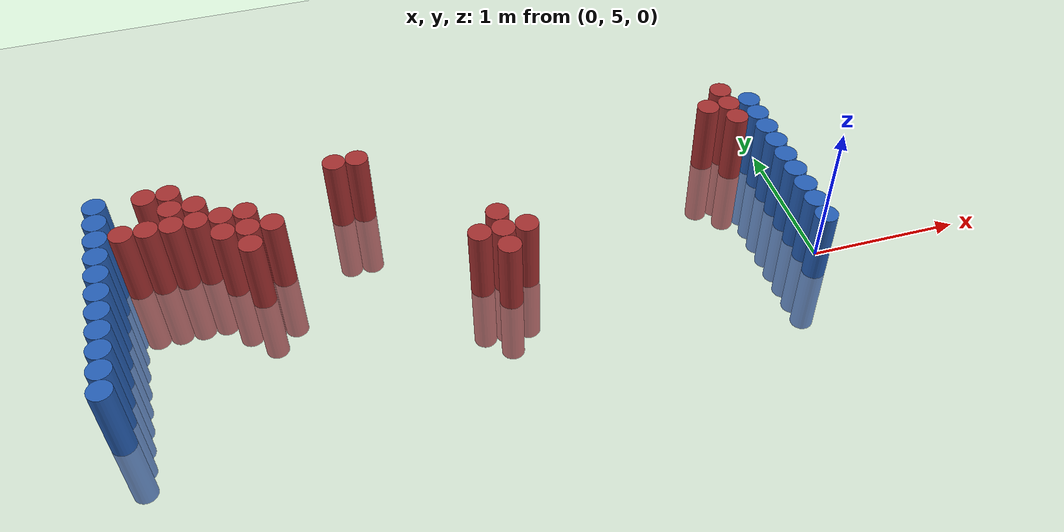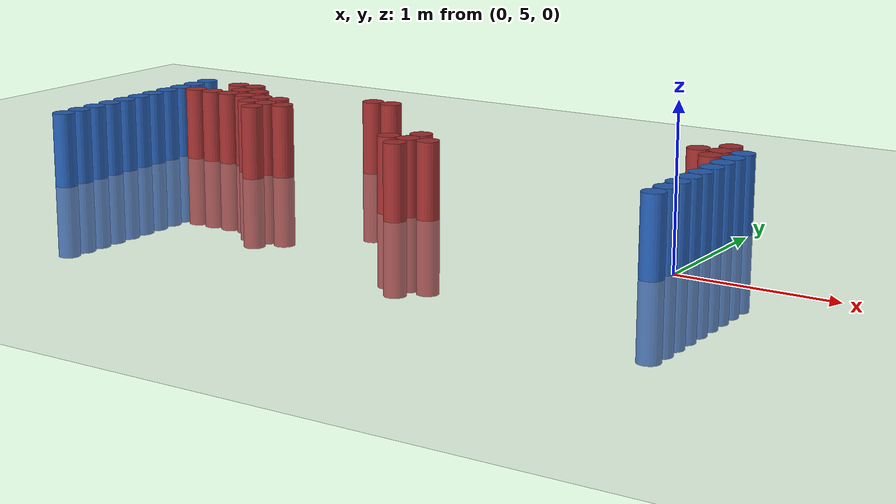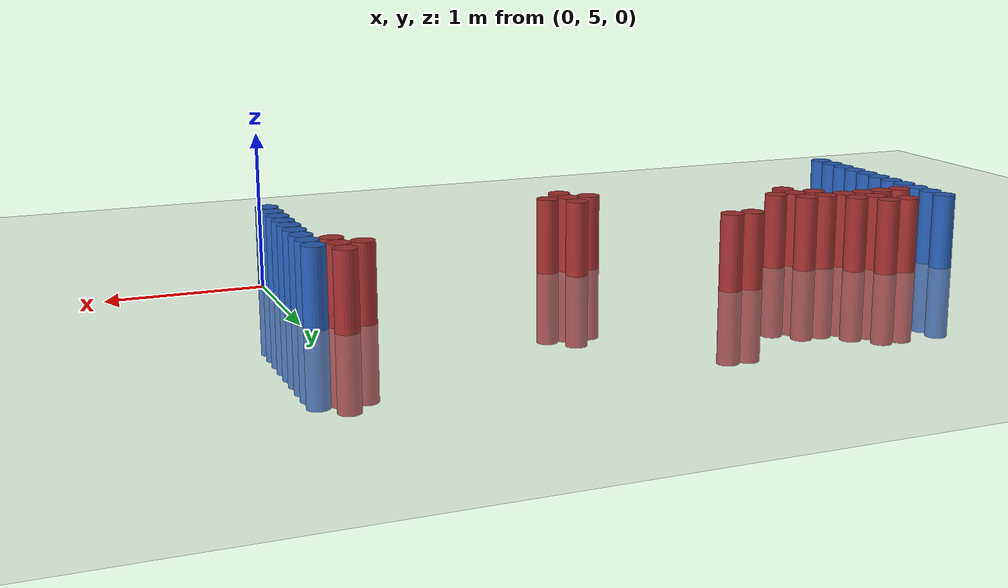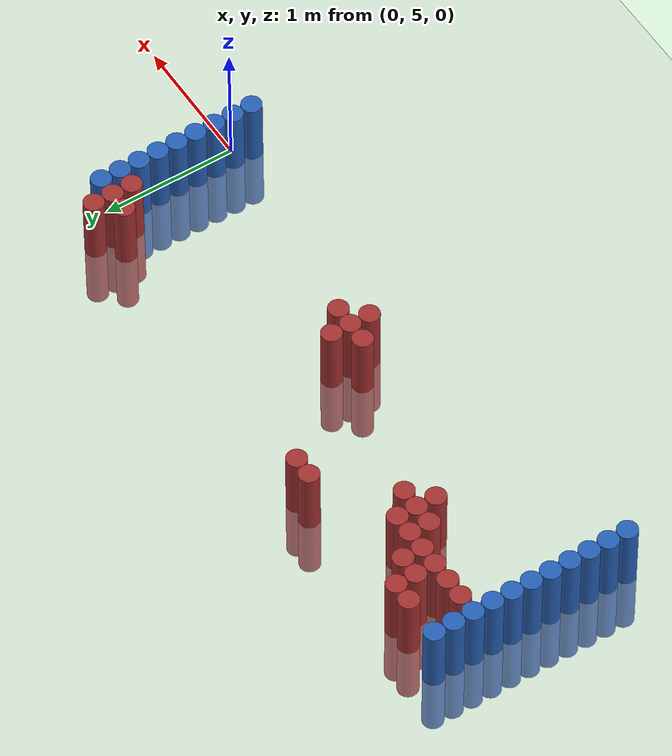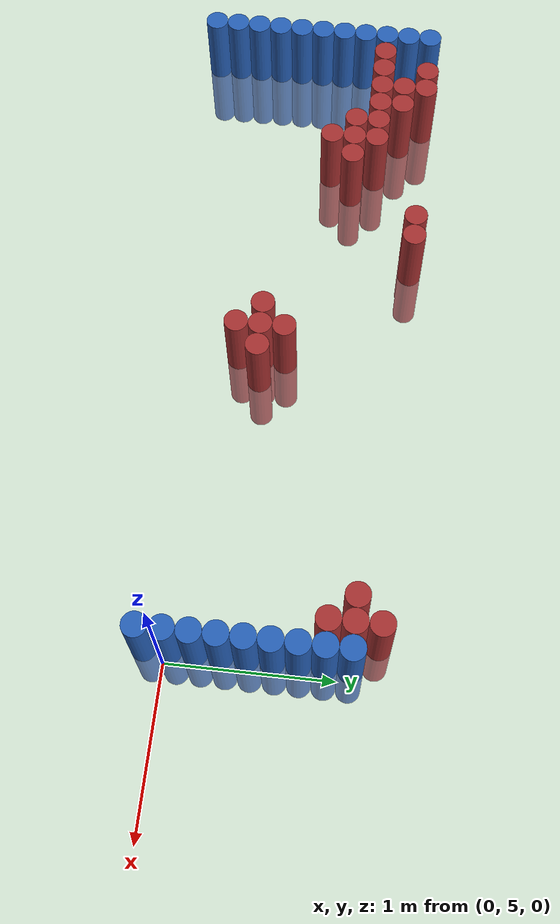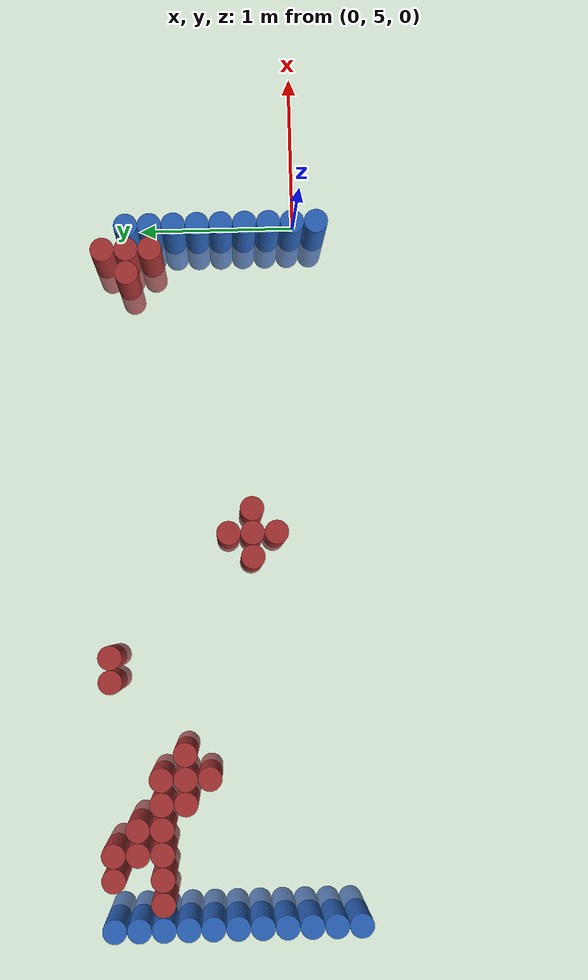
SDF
<sdf version="1.6">
 <world name="default">
  <model name="ground_plane">
   <static>1</static>
   <link name="link">
    <collision name="collision">
     <geometry><plane><normal>0 0 1</normal><size>100 100</size></plane></geometry>
     <surface><friction><ode><mu>100</mu><mu2>50</mu2></ode></friction></surface>
    </collision>
    <visual name="visual">
     <cast_shadows>0</cast_shadows>
     <geometry><plane><normal>0 0 1</normal><size>100 100</size></plane></geometry>
     <material>
      <script><uri>file://media/materials/scripts/gazebo.material</uri><name>Gazebo/Grey</name></script>
     </material>
    </visual>
   </link>
  </model>
  <model name="unit_cylinder_91">
   <static>1</static>
   <pose>-4.425000 4.725000 0.000000 0.000000 0.000000 0.000000</pose>
   <link name="link">
    <inertial>
     <mass>1</mass>
     <inertia><ixx>0.145833</ixx><ixy>0</ixy><ixz>0</ixz><iyy>0.145833</iyy><iyz>0</iyz><izz>0.125</izz></inertia>
    </inertial>
    <collision name="collision">
     <geometry><cylinder><radius>0.075000</radius><length>1</length></cylinder></geometry>
    </collision>
    <visual name="visual">
     <geometry><cylinder><radius>0.075000</radius><length>1</length></cylinder></geometry>
     <material>
      <ambient>0.152000 0.379000 0.720000 1</ambient>
      <diffuse>0.152000 0.379000 0.720000 1</diffuse>
     </material>
     <material>
      <script><name>Gazebo/Grey</name><uri>file://media/materials/scripts/gazebo.material</uri></script>
     </material>
    </visual>
   </link>
  </model>
  <model name="unit_cylinder_92">
   <static>1</static>
   <pose>-0.075000 4.875000 0.000000 0.000000 0.000000 0.000000</pose>
   <link name="link">
    <inertial>
     <mass>1</mass>
     <inertia><ixx>0.145833</ixx><ixy>0</ixy><ixz>0</ixz><iyy>0.145833</iyy><iyz>0</iyz><izz>0.125</izz></inertia>
    </inertial>
    <collision name="collision">
     <geometry><cylinder><radius>0.075000</radius><length>1</length></cylinder></geometry>
    </collision>
    <visual name="visual">
     <geometry><cylinder><radius>0.075000</radius><length>1</length></cylinder></geometry>
     <material>
      <ambient>0.152000 0.379000 0.720000 1</ambient>
      <diffuse>0.152000 0.379000 0.720000 1</diffuse>
     </material>
     <material>
      <script><name>Gazebo/Grey</name><uri>file://media/materials/scripts/gazebo.material</uri></script>
     </material>
    </visual>
   </link>
  </model>
  <model name="unit_cylinder_93">
   <static>1</static>
   <pose>-4.425000 4.875000 0.000000 0.000000 0.000000 0.000000</pose>
   <link name="link">
    <inertial>
     <mass>1</mass>
     <inertia><ixx>0.145833</ixx><ixy>0</ixy><ixz>0</ixz><iyy>0.145833</iyy><iyz>0</iyz><izz>0.125</izz></inertia>
    </inertial>
    <collision name="collision">
     <geometry><cylinder><radius>0.075000</radius><length>1</length></cylinder></geometry>
    </collision>
    <visual name="visual">
     <geometry><cylinder><radius>0.075000</radius><length>1</length></cylinder></geometry>
     <material>
      <ambient>0.152000 0.379000 0.720000 1</ambient>
      <diffuse>0.152000 0.379000 0.720000 1</diffuse>
     </material>
     <material>
      <script><name>Gazebo/Grey</name><uri>file://media/materials/scripts/gazebo.material</uri></script>
     </material>
    </visual>
   </link>
  </model>
  <model name="unit_cylinder_94">
   <static>1</static>
   <pose>-0.075000 5.025000 0.000000 0.000000 0.000000 0.000000</pose>
   <link name="link">
    <inertial>
     <mass>1</mass>
     <inertia><ixx>0.145833</ixx><ixy>0</ixy><ixz>0</ixz><iyy>0.145833</iyy><iyz>0</iyz><izz>0.125</izz></inertia>
    </inertial>
    <collision name="collision">
     <geometry><cylinder><radius>0.075000</radius><length>1</length></cylinder></geometry>
    </collision>
    <visual name="visual">
     <geometry><cylinder><radius>0.075000</radius><length>1</length></cylinder></geometry>
     <material>
      <ambient>0.152000 0.379000 0.720000 1</ambient>
      <diffuse>0.152000 0.379000 0.720000 1</diffuse>
     </material>
     <material>
      <script><name>Gazebo/Grey</name><uri>file://media/materials/scripts/gazebo.material</uri></script>
     </material>
    </visual>
   </link>
  </model>
  <model name="unit_cylinder_95">
   <static>1</static>
   <pose>-4.425000 5.025000 0.000000 0.000000 0.000000 0.000000</pose>
   <link name="link">
    <inertial>
     <mass>1</mass>
     <inertia><ixx>0.145833</ixx><ixy>0</ixy><ixz>0</ixz><iyy>0.145833</iyy><iyz>0</iyz><izz>0.125</izz></inertia>
    </inertial>
    <collision name="collision">
     <geometry><cylinder><radius>0.075000</radius><length>1</length></cylinder></geometry>
    </collision>
    <visual name="visual">
     <geometry><cylinder><radius>0.075000</radius><length>1</length></cylinder></geometry>
     <material>
      <ambient>0.152000 0.379000 0.720000 1</ambient>
      <diffuse>0.152000 0.379000 0.720000 1</diffuse>
     </material>
     <material>
      <script><name>Gazebo/Grey</name><uri>file://media/materials/scripts/gazebo.material</uri></script>
     </material>
    </visual>
   </link>
  </model>
  <model name="unit_cylinder_96">
   <static>1</static>
   <pose>-4.425000 5.175000 0.000000 0.000000 0.000000 0.000000</pose>
   <link name="link">
    <inertial>
     <mass>1</mass>
     <inertia><ixx>0.145833</ixx><ixy>0</ixy><ixz>0</ixz><iyy>0.145833</iyy><iyz>0</iyz><izz>0.125</izz></inertia>
    </inertial>
    <collision name="collision">
     <geometry><cylinder><radius>0.075000</radius><length>1</length></cylinder></geometry>
    </collision>
    <visual name="visual">
     <geometry><cylinder><radius>0.075000</radius><length>1</length></cylinder></geometry>
     <material>
      <ambient>0.152000 0.379000 0.720000 1</ambient>
      <diffuse>0.152000 0.379000 0.720000 1</diffuse>
     </material>
     <material>
      <script><name>Gazebo/Grey</name><uri>file://media/materials/scripts/gazebo.material</uri></script>
     </material>
    </visual>
   </link>
  </model>
  <model name="unit_cylinder_97">
   <static>1</static>
   <pose>-4.425000 5.325000 0.000000 0.000000 0.000000 0.000000</pose>
   <link name="link">
    <inertial>
     <mass>1</mass>
     <inertia><ixx>0.145833</ixx><ixy>0</ixy><ixz>0</ixz><iyy>0.145833</iyy><iyz>0</iyz><izz>0.125</izz></inertia>
    </inertial>
    <collision name="collision">
     <geometry><cylinder><radius>0.075000</radius><length>1</length></cylinder></geometry>
    </collision>
    <visual name="visual">
     <geometry><cylinder><radius>0.075000</radius><length>1</length></cylinder></geometry>
     <material>
      <ambient>0.152000 0.379000 0.720000 1</ambient>
      <diffuse>0.152000 0.379000 0.720000 1</diffuse>
     </material>
     <material>
      <script><name>Gazebo/Grey</name><uri>file://media/materials/scripts/gazebo.material</uri></script>
     </material>
    </visual>
   </link>
  </model>
  <model name="unit_cylinder_98">
   <static>1</static>
   <pose>-4.425000 5.475000 0.000000 0.000000 0.000000 0.000000</pose>
   <link name="link">
    <inertial>
     <mass>1</mass>
     <inertia><ixx>0.145833</ixx><ixy>0</ixy><ixz>0</ixz><iyy>0.145833</iyy><iyz>0</iyz><izz>0.125</izz></inertia>
    </inertial>
    <collision name="collision">
     <geometry><cylinder><radius>0.075000</radius><length>1</length></cylinder></geometry>
    </collision>
    <visual name="visual">
     <geometry><cylinder><radius>0.075000</radius><length>1</length></cylinder></geometry>
     <material>
      <ambient>0.152000 0.379000 0.720000 1</ambient>
      <diffuse>0.152000 0.379000 0.720000 1</diffuse>
     </material>
     <material>
      <script><name>Gazebo/Grey</name><uri>file://media/materials/scripts/gazebo.material</uri></script>
     </material>
    </visual>
   </link>
  </model>
  <model name="unit_cylinder_99">
   <static>1</static>
   <pose>-4.425000 5.625000 0.000000 0.000000 0.000000 0.000000</pose>
   <link name="link">
    <inertial>
     <mass>1</mass>
     <inertia><ixx>0.145833</ixx><ixy>0</ixy><ixz>0</ixz><iyy>0.145833</iyy><iyz>0</iyz><izz>0.125</izz></inertia>
    </inertial>
    <collision name="collision">
     <geometry><cylinder><radius>0.075000</radius><length>1</length></cylinder></geometry>
    </collision>
    <visual name="visual">
     <geometry><cylinder><radius>0.075000</radius><length>1</length></cylinder></geometry>
     <material>
      <ambient>0.152000 0.379000 0.720000 1</ambient>
      <diffuse>0.152000 0.379000 0.720000 1</diffuse>
     </material>
     <material>
      <script><name>Gazebo/Grey</name><uri>file://media/materials/scripts/gazebo.material</uri></script>
     </material>
    </visual>
   </link>
  </model>
  <model name="unit_cylinder_100">
   <static>1</static>
   <pose>-4.425000 5.775000 0.000000 0.000000 0.000000 0.000000</pose>
   <link name="link">
    <inertial>
     <mass>1</mass>
     <inertia><ixx>0.145833</ixx><ixy>0</ixy><ixz>0</ixz><iyy>0.145833</iyy><iyz>0</iyz><izz>0.125</izz></inertia>
    </inertial>
    <collision name="collision">
     <geometry><cylinder><radius>0.075000</radius><length>1</length></cylinder></geometry>
    </collision>
    <visual name="visual">
     <geometry><cylinder><radius>0.075000</radius><length>1</length></cylinder></geometry>
     <material>
      <ambient>0.152000 0.379000 0.720000 1</ambient>
      <diffuse>0.152000 0.379000 0.720000 1</diffuse>
     </material>
     <material>
      <script><name>Gazebo/Grey</name><uri>file://media/materials/scripts/gazebo.material</uri></script>
     </material>
    </visual>
   </link>
  </model>
  <model name="unit_cylinder_101">
   <static>1</static>
   <pose>-4.425000 5.925000 0.000000 0.000000 0.000000 0.000000</pose>
   <link name="link">
    <inertial>
     <mass>1</mass>
     <inertia><ixx>0.145833</ixx><ixy>0</ixy><ixz>0</ixz><iyy>0.145833</iyy><iyz>0</iyz><izz>0.125</izz></inertia>
    </inertial>
    <collision name="collision">
     <geometry><cylinder><radius>0.075000</radius><length>1</length></cylinder></geometry>
    </collision>
    <visual name="visual">
     <geometry><cylinder><radius>0.075000</radius><length>1</length></cylinder></geometry>
     <material>
      <ambient>0.152000 0.379000 0.720000 1</ambient>
      <diffuse>0.152000 0.379000 0.720000 1</diffuse>
     </material>
     <material>
      <script><name>Gazebo/Grey</name><uri>file://media/materials/scripts/gazebo.material</uri></script>
     </material>
    </visual>
   </link>
  </model>
  <model name="unit_cylinder_102">
   <static>1</static>
   <pose>-4.425000 6.075000 0.000000 0.000000 0.000000 0.000000</pose>
   <link name="link">
    <inertial>
     <mass>1</mass>
     <inertia><ixx>0.145833</ixx><ixy>0</ixy><ixz>0</ixz><iyy>0.145833</iyy><iyz>0</iyz><izz>0.125</izz></inertia>
    </inertial>
    <collision name="collision">
     <geometry><cylinder><radius>0.075000</radius><length>1</length></cylinder></geometry>
    </collision>
    <visual name="visual">
     <geometry><cylinder><radius>0.075000</radius><length>1</length></cylinder></geometry>
     <material>
      <ambient>0.152000 0.379000 0.720000 1</ambient>
      <diffuse>0.152000 0.379000 0.720000 1</diffuse>
     </material>
     <material>
      <script><name>Gazebo/Grey</name><uri>file://media/materials/scripts/gazebo.material</uri></script>
     </material>
    </visual>
   </link>
  </model>
  <model name="unit_cylinder_103">
   <static>1</static>
   <pose>-4.425000 6.225000 0.000000 0.000000 0.000000 0.000000</pose>
   <link name="link">
    <inertial>
     <mass>1</mass>
     <inertia><ixx>0.145833</ixx><ixy>0</ixy><ixz>0</ixz><iyy>0.145833</iyy><iyz>0</iyz><izz>0.125</izz></inertia>
    </inertial>
    <collision name="collision">
     <geometry><cylinder><radius>0.075000</radius><length>1</length></cylinder></geometry>
    </collision>
    <visual name="visual">
     <geometry><cylinder><radius>0.075000</radius><length>1</length></cylinder></geometry>
     <material>
      <ambient>0.152000 0.379000 0.720000 1</ambient>
      <diffuse>0.152000 0.379000 0.720000 1</diffuse>
     </material>
     <material>
      <script><name>Gazebo/Grey</name><uri>file://media/materials/scripts/gazebo.material</uri></script>
     </material>
    </visual>
   </link>
  </model>
  <model name="unit_cylinder_126">
   <static>1</static>
   <pose>-4.275000 5.925000 0.000000 0.000000 0.000000 0.000000</pose>
   <link name="link">
    <inertial>
     <mass>1</mass>
     <inertia><ixx>0.145833</ixx><ixy>0</ixy><ixz>0</ixz><iyy>0.145833</iyy><iyz>0</iyz><izz>0.125</izz></inertia>
    </inertial>
    <collision name="collision">
     <geometry><cylinder><radius>0.075000</radius><length>1</length></cylinder></geometry>
    </collision>
    <visual name="visual">
     <geometry><cylinder><radius>0.075000</radius><length>1</length></cylinder></geometry>
     <material>
      <ambient>0.648000 0.192000 0.192000 1</ambient>
      <diffuse>0.648000 0.192000 0.192000 1</diffuse>
     </material>
     <material>
      <script><name>Gazebo/Grey</name><uri>file://media/materials/scripts/gazebo.material</uri></script>
     </material>
    </visual>
   </link>
  </model>
  <model name="unit_cylinder_144">
   <static>1</static>
   <pose>-4.125000 5.925000 0.000000 0.000000 0.000000 0.000000</pose>
   <link name="link">
    <inertial>
     <mass>1</mass>
     <inertia><ixx>0.145833</ixx><ixy>0</ixy><ixz>0</ixz><iyy>0.145833</iyy><iyz>0</iyz><izz>0.125</izz></inertia>
    </inertial>
    <collision name="collision">
     <geometry><cylinder><radius>0.075000</radius><length>1</length></cylinder></geometry>
    </collision>
    <visual name="visual">
     <geometry><cylinder><radius>0.075000</radius><length>1</length></cylinder></geometry>
     <material>
      <ambient>0.648000 0.192000 0.192000 1</ambient>
      <diffuse>0.648000 0.192000 0.192000 1</diffuse>
     </material>
     <material>
      <script><name>Gazebo/Grey</name><uri>file://media/materials/scripts/gazebo.material</uri></script>
     </material>
    </visual>
   </link>
  </model>
  <model name="unit_cylinder_145">
   <static>1</static>
   <pose>-4.125000 6.225000 0.000000 0.000000 0.000000 0.000000</pose>
   <link name="link">
    <inertial>
     <mass>1</mass>
     <inertia><ixx>0.145833</ixx><ixy>0</ixy><ixz>0</ixz><iyy>0.145833</iyy><iyz>0</iyz><izz>0.125</izz></inertia>
    </inertial>
    <collision name="collision">
     <geometry><cylinder><radius>0.075000</radius><length>1</length></cylinder></geometry>
    </collision>
    <visual name="visual">
     <geometry><cylinder><radius>0.075000</radius><length>1</length></cylinder></geometry>
     <material>
      <ambient>0.648000 0.192000 0.192000 1</ambient>
      <diffuse>0.648000 0.192000 0.192000 1</diffuse>
     </material>
     <material>
      <script><name>Gazebo/Grey</name><uri>file://media/materials/scripts/gazebo.material</uri></script>
     </material>
    </visual>
   </link>
  </model>
  <model name="unit_cylinder_153">
   <static>1</static>
   <pose>-3.975000 5.925000 0.000000 0.000000 0.000000 0.000000</pose>
   <link name="link">
    <inertial>
     <mass>1</mass>
     <inertia><ixx>0.145833</ixx><ixy>0</ixy><ixz>0</ixz><iyy>0.145833</iyy><iyz>0</iyz><izz>0.125</izz></inertia>
    </inertial>
    <collision name="collision">
     <geometry><cylinder><radius>0.075000</radius><length>1</length></cylinder></geometry>
    </collision>
    <visual name="visual">
     <geometry><cylinder><radius>0.075000</radius><length>1</length></cylinder></geometry>
     <material>
      <ambient>0.648000 0.192000 0.192000 1</ambient>
      <diffuse>0.648000 0.192000 0.192000 1</diffuse>
     </material>
     <material>
      <script><name>Gazebo/Grey</name><uri>file://media/materials/scripts/gazebo.material</uri></script>
     </material>
    </visual>
   </link>
  </model>
  <model name="unit_cylinder_154">
   <static>1</static>
   <pose>-3.975000 6.075000 0.000000 0.000000 0.000000 0.000000</pose>
   <link name="link">
    <inertial>
     <mass>1</mass>
     <inertia><ixx>0.145833</ixx><ixy>0</ixy><ixz>0</ixz><iyy>0.145833</iyy><iyz>0</iyz><izz>0.125</izz></inertia>
    </inertial>
    <collision name="collision">
     <geometry><cylinder><radius>0.075000</radius><length>1</length></cylinder></geometry>
    </collision>
    <visual name="visual">
     <geometry><cylinder><radius>0.075000</radius><length>1</length></cylinder></geometry>
     <material>
      <ambient>0.648000 0.192000 0.192000 1</ambient>
      <diffuse>0.648000 0.192000 0.192000 1</diffuse>
     </material>
     <material>
      <script><name>Gazebo/Grey</name><uri>file://media/materials/scripts/gazebo.material</uri></script>
     </material>
    </visual>
   </link>
  </model>
  <model name="unit_cylinder_155">
   <static>1</static>
   <pose>-3.975000 6.225000 0.000000 0.000000 0.000000 0.000000</pose>
   <link name="link">
    <inertial>
     <mass>1</mass>
     <inertia><ixx>0.145833</ixx><ixy>0</ixy><ixz>0</ixz><iyy>0.145833</iyy><iyz>0</iyz><izz>0.125</izz></inertia>
    </inertial>
    <collision name="collision">
     <geometry><cylinder><radius>0.075000</radius><length>1</length></cylinder></geometry>
    </collision>
    <visual name="visual">
     <geometry><cylinder><radius>0.075000</radius><length>1</length></cylinder></geometry>
     <material>
      <ambient>0.648000 0.192000 0.192000 1</ambient>
      <diffuse>0.648000 0.192000 0.192000 1</diffuse>
     </material>
     <material>
      <script><name>Gazebo/Grey</name><uri>file://media/materials/scripts/gazebo.material</uri></script>
     </material>
    </visual>
   </link>
  </model>
  <model name="unit_cylinder_157">
   <static>1</static>
   <pose>-3.825000 5.925000 0.000000 0.000000 0.000000 0.000000</pose>
   <link name="link">
    <inertial>
     <mass>1</mass>
     <inertia><ixx>0.145833</ixx><ixy>0</ixy><ixz>0</ixz><iyy>0.145833</iyy><iyz>0</iyz><izz>0.125</izz></inertia>
    </inertial>
    <collision name="collision">
     <geometry><cylinder><radius>0.075000</radius><length>1</length></cylinder></geometry>
    </collision>
    <visual name="visual">
     <geometry><cylinder><radius>0.075000</radius><length>1</length></cylinder></geometry>
     <material>
      <ambient>0.648000 0.192000 0.192000 1</ambient>
      <diffuse>0.648000 0.192000 0.192000 1</diffuse>
     </material>
     <material>
      <script><name>Gazebo/Grey</name><uri>file://media/materials/scripts/gazebo.material</uri></script>
     </material>
    </visual>
   </link>
  </model>
  <model name="unit_cylinder_158">
   <static>1</static>
   <pose>-3.825000 6.075000 0.000000 0.000000 0.000000 0.000000</pose>
   <link name="link">
    <inertial>
     <mass>1</mass>
     <inertia><ixx>0.145833</ixx><ixy>0</ixy><ixz>0</ixz><iyy>0.145833</iyy><iyz>0</iyz><izz>0.125</izz></inertia>
    </inertial>
    <collision name="collision">
     <geometry><cylinder><radius>0.075000</radius><length>1</length></cylinder></geometry>
    </collision>
    <visual name="visual">
     <geometry><cylinder><radius>0.075000</radius><length>1</length></cylinder></geometry>
     <material>
      <ambient>0.648000 0.192000 0.192000 1</ambient>
      <diffuse>0.648000 0.192000 0.192000 1</diffuse>
     </material>
     <material>
      <script><name>Gazebo/Grey</name><uri>file://media/materials/scripts/gazebo.material</uri></script>
     </material>
    </visual>
   </link>
  </model>
  <model name="unit_cylinder_159">
   <static>1</static>
   <pose>-3.675000 5.775000 0.000000 0.000000 0.000000 0.000000</pose>
   <link name="link">
    <inertial>
     <mass>1</mass>
     <inertia><ixx>0.145833</ixx><ixy>0</ixy><ixz>0</ixz><iyy>0.145833</iyy><iyz>0</iyz><izz>0.125</izz></inertia>
    </inertial>
    <collision name="collision">
     <geometry><cylinder><radius>0.075000</radius><length>1</length></cylinder></geometry>
    </collision>
    <visual name="visual">
     <geometry><cylinder><radius>0.075000</radius><length>1</length></cylinder></geometry>
     <material>
      <ambient>0.648000 0.192000 0.192000 1</ambient>
      <diffuse>0.648000 0.192000 0.192000 1</diffuse>
     </material>
     <material>
      <script><name>Gazebo/Grey</name><uri>file://media/materials/scripts/gazebo.material</uri></script>
     </material>
    </visual>
   </link>
  </model>
  <model name="unit_cylinder_160">
   <static>1</static>
   <pose>-3.675000 5.925000 0.000000 0.000000 0.000000 0.000000</pose>
   <link name="link">
    <inertial>
     <mass>1</mass>
     <inertia><ixx>0.145833</ixx><ixy>0</ixy><ixz>0</ixz><iyy>0.145833</iyy><iyz>0</iyz><izz>0.125</izz></inertia>
    </inertial>
    <collision name="collision">
     <geometry><cylinder><radius>0.075000</radius><length>1</length></cylinder></geometry>
    </collision>
    <visual name="visual">
     <geometry><cylinder><radius>0.075000</radius><length>1</length></cylinder></geometry>
     <material>
      <ambient>0.648000 0.192000 0.192000 1</ambient>
      <diffuse>0.648000 0.192000 0.192000 1</diffuse>
     </material>
     <material>
      <script><name>Gazebo/Grey</name><uri>file://media/materials/scripts/gazebo.material</uri></script>
     </material>
    </visual>
   </link>
  </model>
  <model name="unit_cylinder_161">
   <static>1</static>
   <pose>-3.525000 5.625000 0.000000 0.000000 0.000000 0.000000</pose>
   <link name="link">
    <inertial>
     <mass>1</mass>
     <inertia><ixx>0.145833</ixx><ixy>0</ixy><ixz>0</ixz><iyy>0.145833</iyy><iyz>0</iyz><izz>0.125</izz></inertia>
    </inertial>
    <collision name="collision">
     <geometry><cylinder><radius>0.075000</radius><length>1</length></cylinder></geometry>
    </collision>
    <visual name="visual">
     <geometry><cylinder><radius>0.075000</radius><length>1</length></cylinder></geometry>
     <material>
      <ambient>0.648000 0.192000 0.192000 1</ambient>
      <diffuse>0.648000 0.192000 0.192000 1</diffuse>
     </material>
     <material>
      <script><name>Gazebo/Grey</name><uri>file://media/materials/scripts/gazebo.material</uri></script>
     </material>
    </visual>
   </link>
  </model>
  <model name="unit_cylinder_162">
   <static>1</static>
   <pose>-3.525000 5.775000 0.000000 0.000000 0.000000 0.000000</pose>
   <link name="link">
    <inertial>
     <mass>1</mass>
     <inertia><ixx>0.145833</ixx><ixy>0</ixy><ixz>0</ixz><iyy>0.145833</iyy><iyz>0</iyz><izz>0.125</izz></inertia>
    </inertial>
    <collision name="collision">
     <geometry><cylinder><radius>0.075000</radius><length>1</length></cylinder></geometry>
    </collision>
    <visual name="visual">
     <geometry><cylinder><radius>0.075000</radius><length>1</length></cylinder></geometry>
     <material>
      <ambient>0.648000 0.192000 0.192000 1</ambient>
      <diffuse>0.648000 0.192000 0.192000 1</diffuse>
     </material>
     <material>
      <script><name>Gazebo/Grey</name><uri>file://media/materials/scripts/gazebo.material</uri></script>
     </material>
    </visual>
   </link>
  </model>
  <model name="unit_cylinder_163">
   <static>1</static>
   <pose>-3.525000 5.925000 0.000000 0.000000 0.000000 0.000000</pose>
   <link name="link">
    <inertial>
     <mass>1</mass>
     <inertia><ixx>0.145833</ixx><ixy>0</ixy><ixz>0</ixz><iyy>0.145833</iyy><iyz>0</iyz><izz>0.125</izz></inertia>
    </inertial>
    <collision name="collision">
     <geometry><cylinder><radius>0.075000</radius><length>1</length></cylinder></geometry>
    </collision>
    <visual name="visual">
     <geometry><cylinder><radius>0.075000</radius><length>1</length></cylinder></geometry>
     <material>
      <ambient>0.648000 0.192000 0.192000 1</ambient>
      <diffuse>0.648000 0.192000 0.192000 1</diffuse>
     </material>
     <material>
      <script><name>Gazebo/Grey</name><uri>file://media/materials/scripts/gazebo.material</uri></script>
     </material>
    </visual>
   </link>
  </model>
  <model name="unit_cylinder_164">
   <static>1</static>
   <pose>-3.375000 5.775000 0.000000 0.000000 0.000000 0.000000</pose>
   <link name="link">
    <inertial>
     <mass>1</mass>
     <inertia><ixx>0.145833</ixx><ixy>0</ixy><ixz>0</ixz><iyy>0.145833</iyy><iyz>0</iyz><izz>0.125</izz></inertia>
    </inertial>
    <collision name="collision">
     <geometry><cylinder><radius>0.075000</radius><length>1</length></cylinder></geometry>
    </collision>
    <visual name="visual">
     <geometry><cylinder><radius>0.075000</radius><length>1</length></cylinder></geometry>
     <material>
      <ambient>0.648000 0.192000 0.192000 1</ambient>
      <diffuse>0.648000 0.192000 0.192000 1</diffuse>
     </material>
     <material>
      <script><name>Gazebo/Grey</name><uri>file://media/materials/scripts/gazebo.material</uri></script>
     </material>
    </visual>
   </link>
  </model>
  <model name="unit_cylinder_179">
   <static>1</static>
   <pose>-2.925000 6.225000 0.000000 0.000000 0.000000 0.000000</pose>
   <link name="link">
    <inertial>
     <mass>1</mass>
     <inertia><ixx>0.145833</ixx><ixy>0</ixy><ixz>0</ixz><iyy>0.145833</iyy><iyz>0</iyz><izz>0.125</izz></inertia>
    </inertial>
    <collision name="collision">
     <geometry><cylinder><radius>0.075000</radius><length>1</length></cylinder></geometry>
    </collision>
    <visual name="visual">
     <geometry><cylinder><radius>0.075000</radius><length>1</length></cylinder></geometry>
     <material>
      <ambient>0.648000 0.192000 0.192000 1</ambient>
      <diffuse>0.648000 0.192000 0.192000 1</diffuse>
     </material>
     <material>
      <script><name>Gazebo/Grey</name><uri>file://media/materials/scripts/gazebo.material</uri></script>
     </material>
    </visual>
   </link>
  </model>
  <model name="unit_cylinder_185">
   <static>1</static>
   <pose>-2.775000 6.225000 0.000000 0.000000 0.000000 0.000000</pose>
   <link name="link">
    <inertial>
     <mass>1</mass>
     <inertia><ixx>0.145833</ixx><ixy>0</ixy><ixz>0</ixz><iyy>0.145833</iyy><iyz>0</iyz><izz>0.125</izz></inertia>
    </inertial>
    <collision name="collision">
     <geometry><cylinder><radius>0.075000</radius><length>1</length></cylinder></geometry>
    </collision>
    <visual name="visual">
     <geometry><cylinder><radius>0.075000</radius><length>1</length></cylinder></geometry>
     <material>
      <ambient>0.648000 0.192000 0.192000 1</ambient>
      <diffuse>0.648000 0.192000 0.192000 1</diffuse>
     </material>
     <material>
      <script><name>Gazebo/Grey</name><uri>file://media/materials/scripts/gazebo.material</uri></script>
     </material>
    </visual>
   </link>
  </model>
  <model name="unit_cylinder_198">
   <static>1</static>
   <pose>-2.175000 5.325000 0.000000 0.000000 0.000000 0.000000</pose>
   <link name="link">
    <inertial>
     <mass>1</mass>
     <inertia><ixx>0.145833</ixx><ixy>0</ixy><ixz>0</ixz><iyy>0.145833</iyy><iyz>0</iyz><izz>0.125</izz></inertia>
    </inertial>
    <collision name="collision">
     <geometry><cylinder><radius>0.075000</radius><length>1</length></cylinder></geometry>
    </collision>
    <visual name="visual">
     <geometry><cylinder><radius>0.075000</radius><length>1</length></cylinder></geometry>
     <material>
      <ambient>0.648000 0.192000 0.192000 1</ambient>
      <diffuse>0.648000 0.192000 0.192000 1</diffuse>
     </material>
     <material>
      <script><name>Gazebo/Grey</name><uri>file://media/materials/scripts/gazebo.material</uri></script>
     </material>
    </visual>
   </link>
  </model>
  <model name="unit_cylinder_201">
   <static>1</static>
   <pose>-2.025000 5.175000 0.000000 0.000000 0.000000 0.000000</pose>
   <link name="link">
    <inertial>
     <mass>1</mass>
     <inertia><ixx>0.145833</ixx><ixy>0</ixy><ixz>0</ixz><iyy>0.145833</iyy><iyz>0</iyz><izz>0.125</izz></inertia>
    </inertial>
    <collision name="collision">
     <geometry><cylinder><radius>0.075000</radius><length>1</length></cylinder></geometry>
    </collision>
    <visual name="visual">
     <geometry><cylinder><radius>0.075000</radius><length>1</length></cylinder></geometry>
     <material>
      <ambient>0.648000 0.192000 0.192000 1</ambient>
      <diffuse>0.648000 0.192000 0.192000 1</diffuse>
     </material>
     <material>
      <script><name>Gazebo/Grey</name><uri>file://media/materials/scripts/gazebo.material</uri></script>
     </material>
    </visual>
   </link>
  </model>
  <model name="unit_cylinder_202">
   <static>1</static>
   <pose>-2.025000 5.325000 0.000000 0.000000 0.000000 0.000000</pose>
   <link name="link">
    <inertial>
     <mass>1</mass>
     <inertia><ixx>0.145833</ixx><ixy>0</ixy><ixz>0</ixz><iyy>0.145833</iyy><iyz>0</iyz><izz>0.125</izz></inertia>
    </inertial>
    <collision name="collision">
     <geometry><cylinder><radius>0.075000</radius><length>1</length></cylinder></geometry>
    </collision>
    <visual name="visual">
     <geometry><cylinder><radius>0.075000</radius><length>1</length></cylinder></geometry>
     <material>
      <ambient>0.648000 0.192000 0.192000 1</ambient>
      <diffuse>0.648000 0.192000 0.192000 1</diffuse>
     </material>
     <material>
      <script><name>Gazebo/Grey</name><uri>file://media/materials/scripts/gazebo.material</uri></script>
     </material>
    </visual>
   </link>
  </model>
  <model name="unit_cylinder_203">
   <static>1</static>
   <pose>-2.025000 5.475000 0.000000 0.000000 0.000000 0.000000</pose>
   <link name="link">
    <inertial>
     <mass>1</mass>
     <inertia><ixx>0.145833</ixx><ixy>0</ixy><ixz>0</ixz><iyy>0.145833</iyy><iyz>0</iyz><izz>0.125</izz></inertia>
    </inertial>
    <collision name="collision">
     <geometry><cylinder><radius>0.075000</radius><length>1</length></cylinder></geometry>
    </collision>
    <visual name="visual">
     <geometry><cylinder><radius>0.075000</radius><length>1</length></cylinder></geometry>
     <material>
      <ambient>0.648000 0.192000 0.192000 1</ambient>
      <diffuse>0.648000 0.192000 0.192000 1</diffuse>
     </material>
     <material>
      <script><name>Gazebo/Grey</name><uri>file://media/materials/scripts/gazebo.material</uri></script>
     </material>
    </visual>
   </link>
  </model>
  <model name="unit_cylinder_204">
   <static>1</static>
   <pose>-1.875000 5.325000 0.000000 0.000000 0.000000 0.000000</pose>
   <link name="link">
    <inertial>
     <mass>1</mass>
     <inertia><ixx>0.145833</ixx><ixy>0</ixy><ixz>0</ixz><iyy>0.145833</iyy><iyz>0</iyz><izz>0.125</izz></inertia>
    </inertial>
    <collision name="collision">
     <geometry><cylinder><radius>0.075000</radius><length>1</length></cylinder></geometry>
    </collision>
    <visual name="visual">
     <geometry><cylinder><radius>0.075000</radius><length>1</length></cylinder></geometry>
     <material>
      <ambient>0.648000 0.192000 0.192000 1</ambient>
      <diffuse>0.648000 0.192000 0.192000 1</diffuse>
     </material>
     <material>
      <script><name>Gazebo/Grey</name><uri>file://media/materials/scripts/gazebo.material</uri></script>
     </material>
    </visual>
   </link>
  </model>
  <model name="unit_cylinder_224">
   <static>1</static>
   <pose>-0.375000 6.075000 0.000000 0.000000 0.000000 0.000000</pose>
   <link name="link">
    <inertial>
     <mass>1</mass>
     <inertia><ixx>0.145833</ixx><ixy>0</ixy><ixz>0</ixz><iyy>0.145833</iyy><iyz>0</iyz><izz>0.125</izz></inertia>
    </inertial>
    <collision name="collision">
     <geometry><cylinder><radius>0.075000</radius><length>1</length></cylinder></geometry>
    </collision>
    <visual name="visual">
     <geometry><cylinder><radius>0.075000</radius><length>1</length></cylinder></geometry>
     <material>
      <ambient>0.648000 0.192000 0.192000 1</ambient>
      <diffuse>0.648000 0.192000 0.192000 1</diffuse>
     </material>
     <material>
      <script><name>Gazebo/Grey</name><uri>file://media/materials/scripts/gazebo.material</uri></script>
     </material>
    </visual>
   </link>
  </model>
  <model name="unit_cylinder_228">
   <static>1</static>
   <pose>-0.225000 5.925000 0.000000 0.000000 0.000000 0.000000</pose>
   <link name="link">
    <inertial>
     <mass>1</mass>
     <inertia><ixx>0.145833</ixx><ixy>0</ixy><ixz>0</ixz><iyy>0.145833</iyy><iyz>0</iyz><izz>0.125</izz></inertia>
    </inertial>
    <collision name="collision">
     <geometry><cylinder><radius>0.075000</radius><length>1</length></cylinder></geometry>
    </collision>
    <visual name="visual">
     <geometry><cylinder><radius>0.075000</radius><length>1</length></cylinder></geometry>
     <material>
      <ambient>0.648000 0.192000 0.192000 1</ambient>
      <diffuse>0.648000 0.192000 0.192000 1</diffuse>
     </material>
     <material>
      <script><name>Gazebo/Grey</name><uri>file://media/materials/scripts/gazebo.material</uri></script>
     </material>
    </visual>
   </link>
  </model>
  <model name="unit_cylinder_229">
   <static>1</static>
   <pose>-0.225000 6.075000 0.000000 0.000000 0.000000 0.000000</pose>
   <link name="link">
    <inertial>
     <mass>1</mass>
     <inertia><ixx>0.145833</ixx><ixy>0</ixy><ixz>0</ixz><iyy>0.145833</iyy><iyz>0</iyz><izz>0.125</izz></inertia>
    </inertial>
    <collision name="collision">
     <geometry><cylinder><radius>0.075000</radius><length>1</length></cylinder></geometry>
    </collision>
    <visual name="visual">
     <geometry><cylinder><radius>0.075000</radius><length>1</length></cylinder></geometry>
     <material>
      <ambient>0.648000 0.192000 0.192000 1</ambient>
      <diffuse>0.648000 0.192000 0.192000 1</diffuse>
     </material>
     <material>
      <script><name>Gazebo/Grey</name><uri>file://media/materials/scripts/gazebo.material</uri></script>
     </material>
    </visual>
   </link>
  </model>
  <model name="unit_cylinder_230">
   <static>1</static>
   <pose>-0.225000 6.225000 0.000000 0.000000 0.000000 0.000000</pose>
   <link name="link">
    <inertial>
     <mass>1</mass>
     <inertia><ixx>0.145833</ixx><ixy>0</ixy><ixz>0</ixz><iyy>0.145833</iyy><iyz>0</iyz><izz>0.125</izz></inertia>
    </inertial>
    <collision name="collision">
     <geometry><cylinder><radius>0.075000</radius><length>1</length></cylinder></geometry>
    </collision>
    <visual name="visual">
     <geometry><cylinder><radius>0.075000</radius><length>1</length></cylinder></geometry>
     <material>
      <ambient>0.648000 0.192000 0.192000 1</ambient>
      <diffuse>0.648000 0.192000 0.192000 1</diffuse>
     </material>
     <material>
      <script><name>Gazebo/Grey</name><uri>file://media/materials/scripts/gazebo.material</uri></script>
     </material>
    </visual>
   </link>
  </model>
  <model name="unit_cylinder_243">
   <static>1</static>
   <pose>-0.075000 5.175000 0.000000 0.000000 0.000000 0.000000</pose>
   <link name="link">
    <inertial>
     <mass>1</mass>
     <inertia><ixx>0.145833</ixx><ixy>0</ixy><ixz>0</ixz><iyy>0.145833</iyy><iyz>0</iyz><izz>0.125</izz></inertia>
    </inertial>
    <collision name="collision">
     <geometry><cylinder><radius>0.075000</radius><length>1</length></cylinder></geometry>
    </collision>
    <visual name="visual">
     <geometry><cylinder><radius>0.075000</radius><length>1</length></cylinder></geometry>
     <material>
      <ambient>0.152000 0.379000 0.720000 1</ambient>
      <diffuse>0.152000 0.379000 0.720000 1</diffuse>
     </material>
     <material>
      <script><name>Gazebo/Grey</name><uri>file://media/materials/scripts/gazebo.material</uri></script>
     </material>
    </visual>
   </link>
  </model>
  <model name="unit_cylinder_244">
   <static>1</static>
   <pose>-0.075000 5.325000 0.000000 0.000000 0.000000 0.000000</pose>
   <link name="link">
    <inertial>
     <mass>1</mass>
     <inertia><ixx>0.145833</ixx><ixy>0</ixy><ixz>0</ixz><iyy>0.145833</iyy><iyz>0</iyz><izz>0.125</izz></inertia>
    </inertial>
    <collision name="collision">
     <geometry><cylinder><radius>0.075000</radius><length>1</length></cylinder></geometry>
    </collision>
    <visual name="visual">
     <geometry><cylinder><radius>0.075000</radius><length>1</length></cylinder></geometry>
     <material>
      <ambient>0.152000 0.379000 0.720000 1</ambient>
      <diffuse>0.152000 0.379000 0.720000 1</diffuse>
     </material>
     <material>
      <script><name>Gazebo/Grey</name><uri>file://media/materials/scripts/gazebo.material</uri></script>
     </material>
    </visual>
   </link>
  </model>
  <model name="unit_cylinder_245">
   <static>1</static>
   <pose>-0.075000 5.475000 0.000000 0.000000 0.000000 0.000000</pose>
   <link name="link">
    <inertial>
     <mass>1</mass>
     <inertia><ixx>0.145833</ixx><ixy>0</ixy><ixz>0</ixz><iyy>0.145833</iyy><iyz>0</iyz><izz>0.125</izz></inertia>
    </inertial>
    <collision name="collision">
     <geometry><cylinder><radius>0.075000</radius><length>1</length></cylinder></geometry>
    </collision>
    <visual name="visual">
     <geometry><cylinder><radius>0.075000</radius><length>1</length></cylinder></geometry>
     <material>
      <ambient>0.152000 0.379000 0.720000 1</ambient>
      <diffuse>0.152000 0.379000 0.720000 1</diffuse>
     </material>
     <material>
      <script><name>Gazebo/Grey</name><uri>file://media/materials/scripts/gazebo.material</uri></script>
     </material>
    </visual>
   </link>
  </model>
  <model name="unit_cylinder_246">
   <static>1</static>
   <pose>-0.075000 5.625000 0.000000 0.000000 0.000000 0.000000</pose>
   <link name="link">
    <inertial>
     <mass>1</mass>
     <inertia><ixx>0.145833</ixx><ixy>0</ixy><ixz>0</ixz><iyy>0.145833</iyy><iyz>0</iyz><izz>0.125</izz></inertia>
    </inertial>
    <collision name="collision">
     <geometry><cylinder><radius>0.075000</radius><length>1</length></cylinder></geometry>
    </collision>
    <visual name="visual">
     <geometry><cylinder><radius>0.075000</radius><length>1</length></cylinder></geometry>
     <material>
      <ambient>0.152000 0.379000 0.720000 1</ambient>
      <diffuse>0.152000 0.379000 0.720000 1</diffuse>
     </material>
     <material>
      <script><name>Gazebo/Grey</name><uri>file://media/materials/scripts/gazebo.material</uri></script>
     </material>
    </visual>
   </link>
  </model>
  <model name="unit_cylinder_247">
   <static>1</static>
   <pose>-0.075000 5.775000 0.000000 0.000000 0.000000 0.000000</pose>
   <link name="link">
    <inertial>
     <mass>1</mass>
     <inertia><ixx>0.145833</ixx><ixy>0</ixy><ixz>0</ixz><iyy>0.145833</iyy><iyz>0</iyz><izz>0.125</izz></inertia>
    </inertial>
    <collision name="collision">
     <geometry><cylinder><radius>0.075000</radius><length>1</length></cylinder></geometry>
    </collision>
    <visual name="visual">
     <geometry><cylinder><radius>0.075000</radius><length>1</length></cylinder></geometry>
     <material>
      <ambient>0.152000 0.379000 0.720000 1</ambient>
      <diffuse>0.152000 0.379000 0.720000 1</diffuse>
     </material>
     <material>
      <script><name>Gazebo/Grey</name><uri>file://media/materials/scripts/gazebo.material</uri></script>
     </material>
    </visual>
   </link>
  </model>
  <model name="unit_cylinder_248">
   <static>1</static>
   <pose>-0.075000 5.925000 0.000000 0.000000 0.000000 0.000000</pose>
   <link name="link">
    <inertial>
     <mass>1</mass>
     <inertia><ixx>0.145833</ixx><ixy>0</ixy><ixz>0</ixz><iyy>0.145833</iyy><iyz>0</iyz><izz>0.125</izz></inertia>
    </inertial>
    <collision name="collision">
     <geometry><cylinder><radius>0.075000</radius><length>1</length></cylinder></geometry>
    </collision>
    <visual name="visual">
     <geometry><cylinder><radius>0.075000</radius><length>1</length></cylinder></geometry>
     <material>
      <ambient>0.152000 0.379000 0.720000 1</ambient>
      <diffuse>0.152000 0.379000 0.720000 1</diffuse>
     </material>
     <material>
      <script><name>Gazebo/Grey</name><uri>file://media/materials/scripts/gazebo.material</uri></script>
     </material>
    </visual>
   </link>
  </model>
  <model name="unit_cylinder_249">
   <static>1</static>
   <pose>-0.075000 6.075000 0.000000 0.000000 0.000000 0.000000</pose>
   <link name="link">
    <inertial>
     <mass>1</mass>
     <inertia><ixx>0.145833</ixx><ixy>0</ixy><ixz>0</ixz><iyy>0.145833</iyy><iyz>0</iyz><izz>0.125</izz></inertia>
    </inertial>
    <collision name="collision">
     <geometry><cylinder><radius>0.075000</radius><length>1</length></cylinder></geometry>
    </collision>
    <visual name="visual">
     <geometry><cylinder><radius>0.075000</radius><length>1</length></cylinder></geometry>
     <material>
      <ambient>0.152000 0.379000 0.720000 1</ambient>
      <diffuse>0.152000 0.379000 0.720000 1</diffuse>
     </material>
     <material>
      <script><name>Gazebo/Grey</name><uri>file://media/materials/scripts/gazebo.material</uri></script>
     </material>
    </visual>
   </link>
  </model>
 </world>
</sdf>
